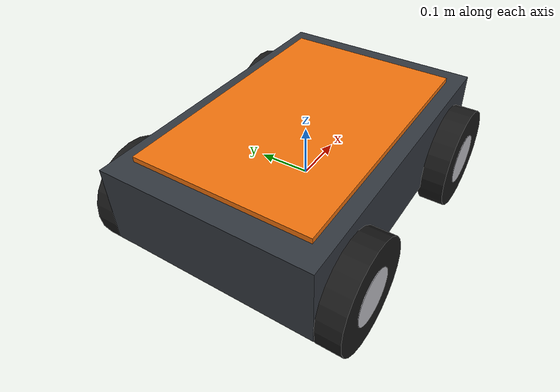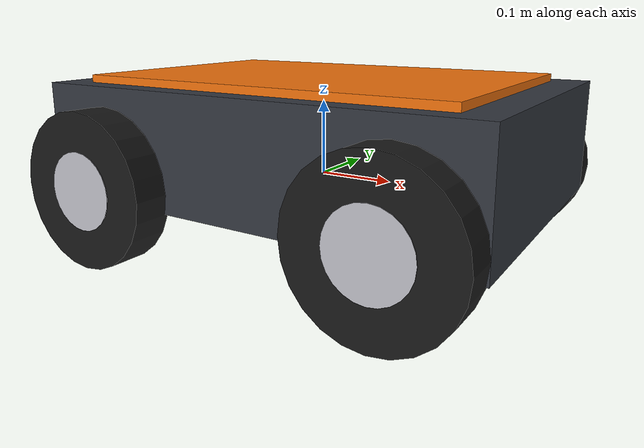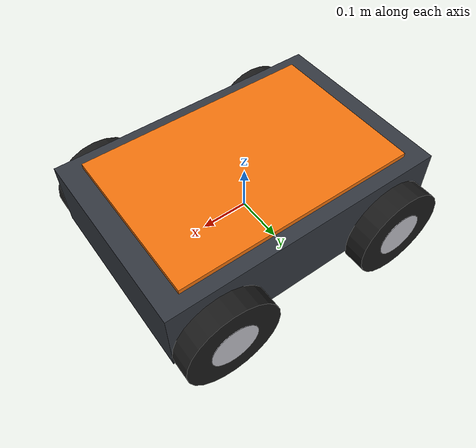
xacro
<?xml version="1.0"?>
<robot xmlns:xacro="http://www.ros.org/wiki/xacro" name="four_wheel_robot">

  <!-- Master Robot Xacro Description Entry Point                                -->

  <!-- Inertial Calculation Macros -->
  <xacro:include filename="inertial_macros.xacro"/>

  <!-- Base Link and Chassis -->
  <xacro:include filename="chassis.xacro"/>

  <!-- Wheel Links and Joints -->
  <xacro:include filename="wheels.xacro"/>

  <!-- Gazebo Simulation & Physics Plugins -->
  <xacro:include filename="gazebo.xacro"/>

  <!-- ros2_control Hardware Interfaces -->
  <xacro:include filename="ros2_control.xacro"/>

</robot>

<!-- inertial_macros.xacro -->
<robot xmlns:xacro="http://www.ros.org/wiki/xacro">

  <!-- Inertial Macro: Solid Box                                                 -->
  <!-- Dimensions: x_len (Length), y_len (Width), z_len (Height)                 -->
  <!-- Equations:                                                                -->
  <!--   Ixx = (1/12) * m * (y^2 + z^2)                                          -->
  <!--   Iyy = (1/12) * m * (x^2 + z^2)                                          -->
  <!--   Izz = (1/12) * m * (x^2 + y^2)                                          -->
  <xacro:macro name="box_inertia" params="m x_len y_len z_len *origin">
    <inertial>
      <xacro:insert_block name="origin"/>
      <mass value="${m}"/>
      <inertia ixx="${(m/12.0) * (y_len*y_len + z_len*z_len)}" ixy="0.0" ixz="0.0"
               iyy="${(m/12.0) * (x_len*x_len + z_len*z_len)}" iyz="0.0"
               izz="${(m/12.0) * (x_len*x_len + y_len*y_len)}"/>
    </inertial>
  </xacro:macro>

  <!-- Inertial Macro: Solid Cylinder oriented along Y-axis                      -->
  <!-- Radius: r, Length (Thickness): l, Mass: m                                 -->
  <!-- Equations:                                                                -->
  <!--   Ixx = (1/12) * m * (3*r^2 + l^2)                                        -->
  <!--   Iyy = (1/2)  * m * r^2                                                  -->
  <!--   Izz = (1/12) * m * (3*r^2 + l^2)                                        -->
  <xacro:macro name="cylinder_inertia_y" params="m r l *origin">
    <inertial>
      <xacro:insert_block name="origin"/>
      <mass value="${m}"/>
      <inertia ixx="${(m/12.0) * (3.0*r*r + l*l)}" ixy="0.0" ixz="0.0"
               iyy="${0.5 * m * r*r}" iyz="0.0"
               izz="${(m/12.0) * (3.0*r*r + l*l)}"/>
    </inertial>
  </xacro:macro>

  <!-- Inertial Macro: Solid Sphere                                              -->
  <!-- Radius: r, Mass: m                                                        -->
  <!-- Equations:                                                                -->
  <!--   Ixx = Iyy = Izz = (2/5) * m * r^2                                       -->
  <xacro:macro name="sphere_inertia" params="m r *origin">
    <inertial>
      <xacro:insert_block name="origin"/>
      <mass value="${m}"/>
      <inertia ixx="${0.4 * m * r*r}" ixy="0.0" ixz="0.0"
               iyy="${0.4 * m * r*r}" iyz="0.0"
               izz="${0.4 * m * r*r}"/>
    </inertial>
  </xacro:macro>

</robot>

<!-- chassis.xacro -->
<robot xmlns:xacro="http://www.ros.org/wiki/xacro">

  <!-- Properties: Chassis Dimensions and Mass                                   -->
  <!-- Length (X): 0.60 m                                                        -->
  <!-- Width  (Y): 0.40 m                                                        -->
  <!-- Height (Z): 0.15 m                                                        -->
  <!-- Mass   (M): 15.0 kg                                                       -->
  <!-- Ground Clearance: 0.075 m (Chassis offset Z: 0.05 m above wheel axis)     -->
  <xacro:property name="chassis_length" value="0.60"/>
  <xacro:property name="chassis_width"  value="0.40"/>
  <xacro:property name="chassis_height" value="0.15"/>
  <xacro:property name="chassis_mass"   value="15.0"/>
  <xacro:property name="chassis_offset_z" value="0.05"/>

  <!-- Base Link: The kinematic origin (centered between wheel axles)            -->
  <!-- Placed at wheel axis height (z = 0.10m above ground plane)                -->
  <link name="base_link">
  </link>

  <!-- Chassis Link & Joint                                                      -->
  <joint name="chassis_joint" type="fixed">
    <parent link="base_link"/>
    <child link="chassis_link"/>
    <origin xyz="0 0 0" rpy="0 0 0"/>
  </joint>

  <link name="chassis_link">
    <!-- Main Body Visual -->
    <visual>
      <origin xyz="0 0 ${chassis_offset_z}" rpy="0 0 0"/>
      <geometry>
        <box size="${chassis_length} ${chassis_width} ${chassis_height}"/>
      </geometry>
      <material name="dark_grey">
        <color rgba="0.2 0.22 0.25 1.0"/>
      </material>
    </visual>

    <!-- Top Accent Plate Visual -->
    <visual>
      <origin xyz="0 0 ${chassis_offset_z + chassis_height/2.0 + 0.005}" rpy="0 0 0"/>
      <geometry>
        <box size="${chassis_length * 0.85} ${chassis_width * 0.85} 0.01"/>
      </geometry>
      <material name="accent_orange">
        <color rgba="0.95 0.45 0.05 1.0"/>
      </material>
    </visual>

    <!-- Main Body Collision -->
    <collision>
      <origin xyz="0 0 ${chassis_offset_z}" rpy="0 0 0"/>
      <geometry>
        <box size="${chassis_length} ${chassis_width} ${chassis_height}"/>
      </geometry>
    </collision>

    <!-- Main Body Inertia -->
    <xacro:box_inertia m="${chassis_mass}" x_len="${chassis_length}" y_len="${chassis_width}" z_len="${chassis_height}">
      <origin xyz="0 0 ${chassis_offset_z}" rpy="0 0 0"/>
    </xacro:box_inertia>
  </link>

</robot>

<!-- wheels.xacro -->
<robot xmlns:xacro="http://www.ros.org/wiki/xacro">

  <!-- Wheel Properties                                                          -->
  <!-- Radius: 0.10 m, Width: 0.05 m, Mass: 2.5 kg                               -->
  <!-- Wheel Separation: 0.44 m (Y-offset = +/- 0.22 m)                          -->
  <!-- Wheelbase: 0.40 m (X-offset = +/- 0.20 m)                                 -->
  <xacro:property name="wheel_radius" value="0.10"/>
  <xacro:property name="wheel_width"  value="0.05"/>
  <xacro:property name="wheel_mass"   value="2.5"/>

  <xacro:property name="wheel_offset_x" value="0.20"/>
  <xacro:property name="wheel_offset_y" value="0.22"/>

  <!-- Wheel Macro                                                               -->
  <!-- Creates a single continuous wheel joint and wheel link.                   -->
  <!-- Cylinder is oriented along Y-axis to match joint rotation axis (0, 1, 0). -->
  <xacro:macro name="wheel" params="prefix parent_link x_offset y_offset">

    <joint name="${prefix}_wheel_joint" type="continuous">
      <parent link="${parent_link}"/>
      <child link="${prefix}_wheel_link"/>
      <origin xyz="${x_offset} ${y_offset} 0.0" rpy="0 0 0"/>
      <axis xyz="0 1 0"/>
    </joint>

    <link name="${prefix}_wheel_link">
      <!-- Visual Geometry: Cylinder aligned with Y-axis -->
      <visual>
        <origin xyz="0 0 0" rpy="${pi/2} 0 0"/>
        <geometry>
          <cylinder radius="${wheel_radius}" length="${wheel_width}"/>
        </geometry>
        <material name="matte_black">
          <color rgba="0.1 0.1 0.1 1.0"/>
        </material>
      </visual>

      <!-- Rim / Hub Visual Accent -->
      <visual>
        <origin xyz="0 0 0" rpy="${pi/2} 0 0"/>
        <geometry>
          <cylinder radius="${wheel_radius * 0.5}" length="${wheel_width + 0.002}"/>
        </geometry>
        <material name="metallic_silver">
          <color rgba="0.75 0.75 0.78 1.0"/>
        </material>
      </visual>

      <!-- Collision Geometry -->
      <collision>
        <origin xyz="0 0 0" rpy="${pi/2} 0 0"/>
        <geometry>
          <cylinder radius="${wheel_radius}" length="${wheel_width}"/>
        </geometry>
      </collision>

      <!-- Dynamic Inertia Calculation -->
      <xacro:cylinder_inertia_y m="${wheel_mass}" r="${wheel_radius}" l="${wheel_width}">
        <origin xyz="0 0 0" rpy="0 0 0"/>
      </xacro:cylinder_inertia_y>
    </link>

  </xacro:macro>

  <!-- Instantiate the 4 Wheels                                                  -->

  <!-- Front Left Wheel -->
  <xacro:wheel prefix="front_left" parent_link="base_link" x_offset="${wheel_offset_x}" y_offset="${wheel_offset_y}"/>

  <!-- Front Right Wheel -->
  <xacro:wheel prefix="front_right" parent_link="base_link" x_offset="${wheel_offset_x}" y_offset="-${wheel_offset_y}"/>

  <!-- Rear Left Wheel -->
  <xacro:wheel prefix="rear_left" parent_link="base_link" x_offset="-${wheel_offset_x}" y_offset="${wheel_offset_y}"/>

  <!-- Rear Right Wheel -->
  <xacro:wheel prefix="rear_right" parent_link="base_link" x_offset="-${wheel_offset_x}" y_offset="-${wheel_offset_y}"/>

</robot>
